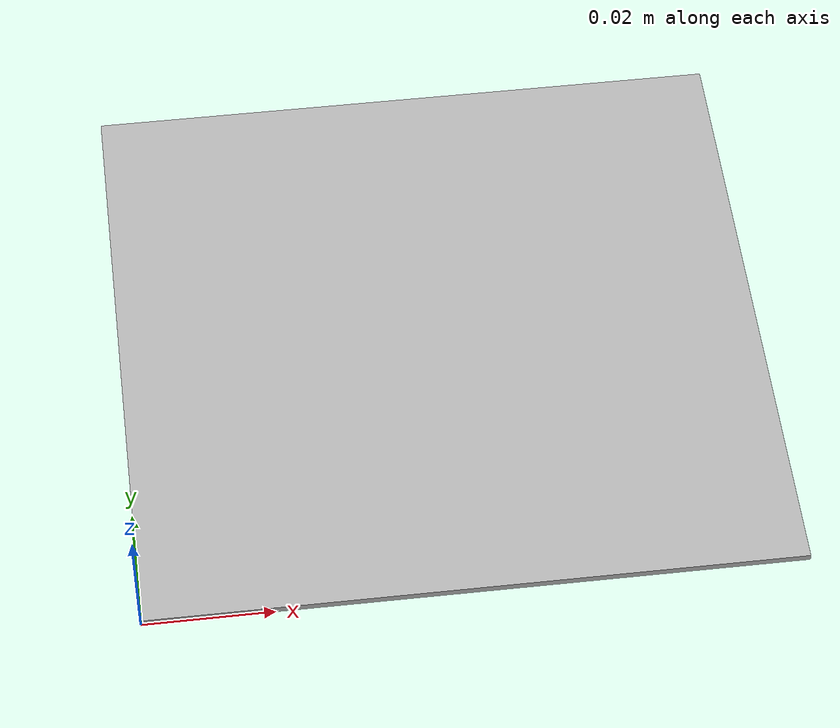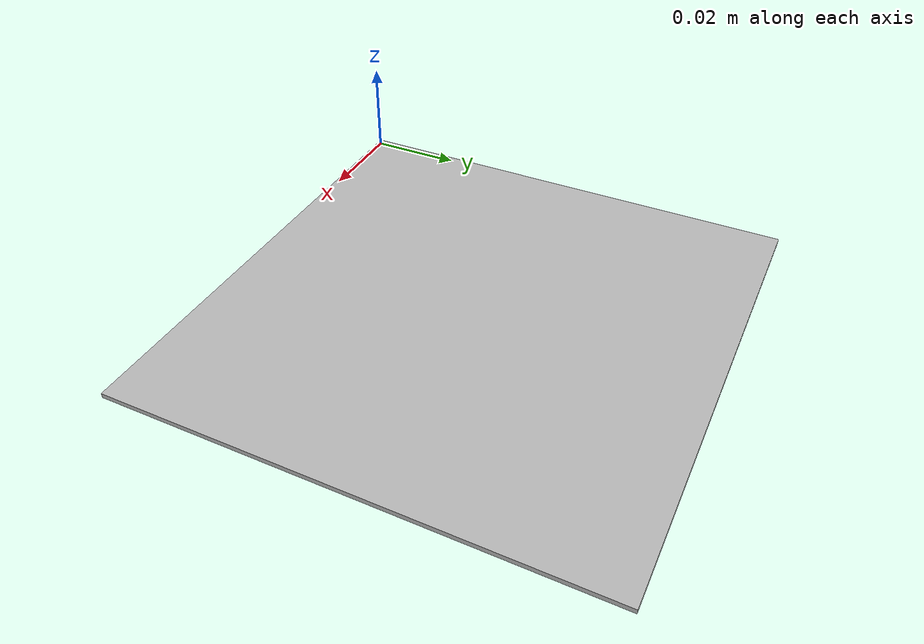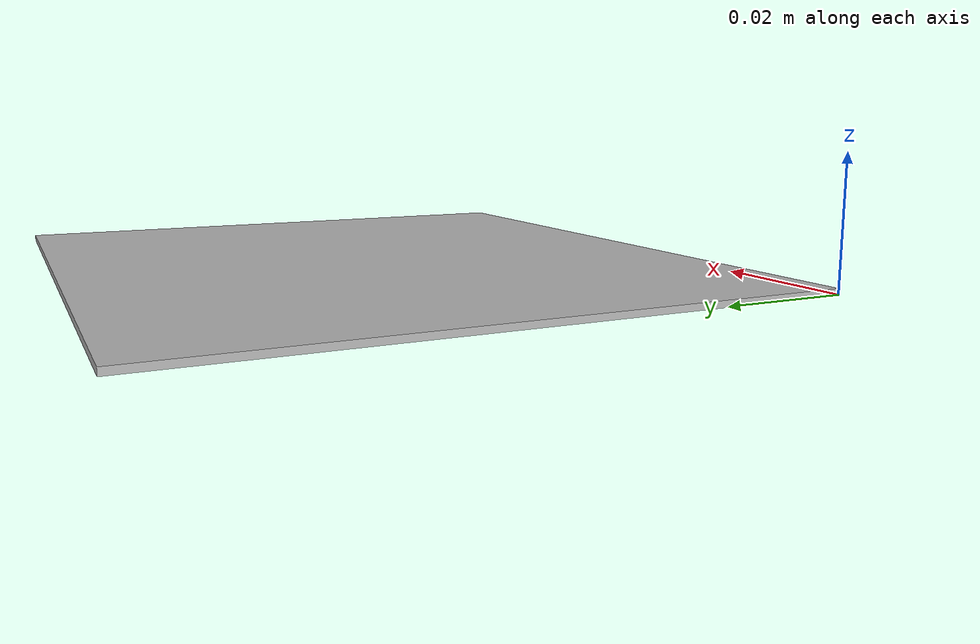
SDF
<?xml version="1.0" ?>
<sdf version="1.7">
    <model name="aruco_tag_80">
        <static>true</static>
        <pose>0 0 0 0 0 0</pose>
        <link name="link">
            <visual name="visual">
                <geometry>
                    <mesh>
                        <uri>model://aruco_tag_80/meshes/aruco_tag_80.obj</uri>
                        <scale>0.1 0.1 1</scale>
                    </mesh>
                </geometry>
            </visual>
        </link>
    </model>
</sdf>
